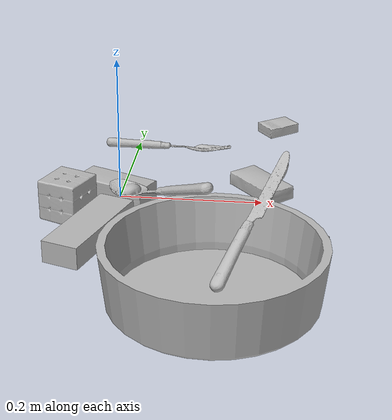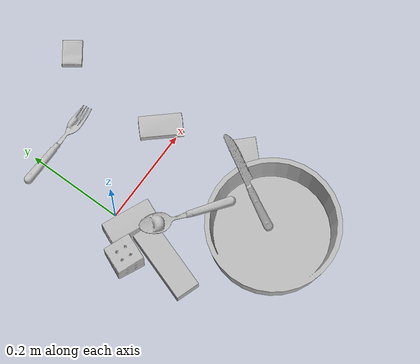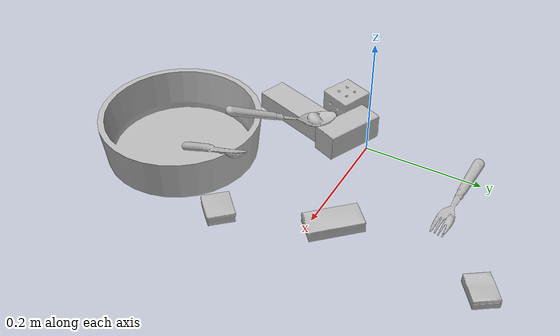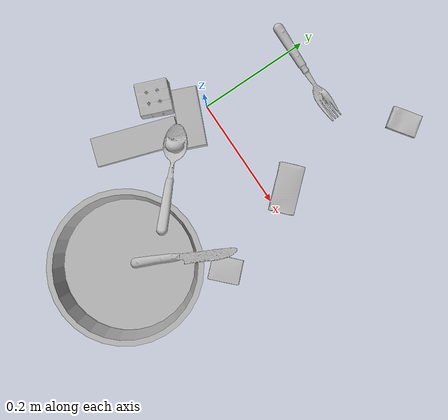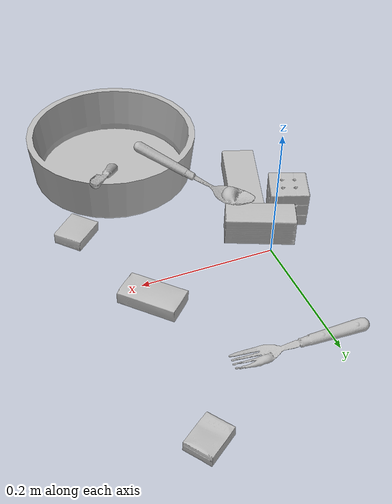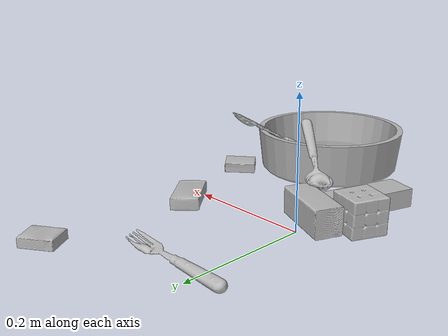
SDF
<sdf version="1.4">
  <world name="default">
    <light name="light1" type="point">
      <pose>0 0 1 0 0 0</pose>
      <diffuse>3 3 3 1</diffuse>
      <specular>3 3 3 1</specular>
    </light>
    <light name="light2" type="point">
      <pose>0 0.5 2 0 0 0</pose>
      <diffuse>1 1 1 1</diffuse>
      <specular>1 1 1 1</specular>
    </light>
    <light name="light3" type="point">
      <pose>0 0.5 2 0 0 0</pose>
      <diffuse>3 3 3 1</diffuse>
      <specular>3 3 3 1</specular>
    </light>
    <scene>
      <ambient>0.7 0.7 0.7</ambient>
    </scene>
    <model name="box11">
      <link name="link_box11">
        <collision name="default">
          <geometry>
            <mesh>
              <uri>model://cracker_box/collision_meshes/collision.obj</uri>
              <scale>0.25 0.25 0.25</scale>
            </mesh>
          </geometry>
          <surface>
            <friction>
              <ode>
                <mu>0.5</mu>
                <mu2>0.5</mu2>
              </ode>
            </friction>
          <contact>
        <ode>
            <max_vel>0</max_vel>
            <min_depth>0.0001</min_depth>
            <kp>1e8</kp>
        </ode>
    </contact></surface>
        </collision>
        <visual name="default">
          <geometry>
            <mesh>
              <uri>model://cracker_box/visual_meshes/visual.dae</uri>
              <scale>0.25 0.25 0.25</scale>
            </mesh>
          </geometry>
        </visual>
        <inertial>
          <mass>0.04448898881673813</mass>
          <pose>0.00023660270380787551 6.358561950037256e-05 -0.000425738311605528 -0.00031620780372907927 -0.011106488668730609 0.002546795468482302</pose>
          <inertia>
            <ixx>7.0725087e-06</ixx>
            <iyy>1.1678099e-05</iyy>
            <izz>1.666572e-05</izz>
            <ixy>0</ixy>
            <ixz>0</ixz>
            <iyz>0</iyz>
          </inertia>
        </inertial>
      </link>
      <pose>0.21581220626831055 0.2707640826702118 0.009120451286435127 -0.011788069413172004 -0.00736711301105751 0.6105540675183195</pose>
    </model>
    <model name="box12">
      <link name="link_box12">
        <collision name="default">
          <geometry>
            <mesh>
              <uri>model://wood_block/collision_meshes/collision.obj</uri>
              <scale>0.5 0.5 0.5</scale>
            </mesh>
          </geometry>
          <surface>
            <friction>
              <ode>
                <mu>0.5</mu>
                <mu2>0.5</mu2>
              </ode>
            </friction>
          <contact>
        <ode>
            <max_vel>0</max_vel>
            <min_depth>0.0001</min_depth>
            <kp>1e8</kp>
        </ode>
    </contact></surface>
        </collision>
        <visual name="default">
          <geometry>
            <mesh>
              <uri>model://wood_block/visual_meshes/visual.dae</uri>
              <scale>0.5 0.5 0.5</scale>
            </mesh>
          </geometry>
        </visual>
        <inertial>
          <mass>0.30308207869529724</mass>
          <pose>-2.906657982748584e-06 -0.000285404734313488 0.00013204291462898254 -0.05220975528484064 -0.0051926956083073895 -0.006861380255216688</pose>
          <inertia>
            <ixx>0.00010139242</ixx>
            <iyy>0.00032029866</iyy>
            <izz>0.0003191006</izz>
            <ixy>0</ixy>
            <ixz>0</ixz>
            <iyz>0</iyz>
          </inertia>
        </inertial>
      </link>
      <pose>0.001506483182311058 -0.03705042973160744 0.02262926660478115 -0.005208399081455181 0.005718828951923755 2.737729597548956</pose>
    </model>
    <model name="box13">
      <link name="link_box13">
        <collision name="default">
          <geometry>
            <mesh>
              <uri>model://pudding_box/collision_meshes/collision.obj</uri>
              <scale>0.5 0.5 0.5</scale>
            </mesh>
          </geometry>
          <surface>
            <friction>
              <ode>
                <mu>0.5</mu>
                <mu2>0.5</mu2>
              </ode>
            </friction>
          <contact>
        <ode>
            <max_vel>0</max_vel>
            <min_depth>0.0001</min_depth>
            <kp>1e8</kp>
        </ode>
    </contact></surface>
        </collision>
        <visual name="default">
          <geometry>
            <mesh>
              <uri>model://pudding_box/visual_meshes/visual.dae</uri>
              <scale>0.5 0.5 0.5</scale>
            </mesh>
          </geometry>
        </visual>
        <inertial>
          <mass>0.06630203872919083</mass>
          <pose>0.00024474109522998333 0.00040339428232982755 -0.00025944141088984907 0.0052131027026664865 -0.006603797821229493 0.02007983447369903</pose>
          <inertia>
            <ixx>1.873776e-05</ixx>
            <iyy>1.2606899e-05</iyy>
            <izz>2.7671198e-05</izz>
            <ixy>0</ixy>
            <ixz>0</ixz>
            <iyz>0</iyz>
          </inertia>
        </inertial>
      </link>
      <pose>0.25462713837623596 -0.1318722516298294 0.009862908162176609 0.022348516154632785 -0.011391725600831163 -0.804823797195066</pose>
    </model>
    <model name="box21">
      <link name="link_box21">
        <collision name="default">
          <geometry>
            <mesh>
              <uri>model://sugar_box/collision_meshes/collision.obj</uri>
              <scale>0.5 0.5 0.5</scale>
            </mesh>
          </geometry>
          <surface>
            <friction>
              <ode>
                <mu>0.5</mu>
                <mu2>0.5</mu2>
              </ode>
            </friction>
          <contact>
        <ode>
            <max_vel>0</max_vel>
            <min_depth>0.0001</min_depth>
            <kp>1e8</kp>
        </ode>
    </contact></surface>
        </collision>
        <visual name="default">
          <geometry>
            <mesh>
              <uri>model://sugar_box/visual_meshes/visual.dae</uri>
              <scale>0.5 0.5 0.5</scale>
            </mesh>
          </geometry>
        </visual>
        <inertial>
          <mass>0.09398066252470016</mass>
          <pose>0.0005171863595023751 1.924554817378521e-05 -0.00018182402709499002 -0.00040462650409139634 0.0010506636387973133 0.002615378555960767</pose>
          <inertia>
            <ixx>1.9576108e-05</ixx>
            <iyy>6.3274e-05</iyy>
            <izz>7.574653e-05</izz>
            <ixy>0</ixy>
            <ixz>0</ixz>
            <iyz>0</iyz>
          </inertia>
        </inertial>
      </link>
      <pose>0.1973000317811966 0.035254620015621185 0.011399297043681145 0.0007759224883024501 -0.023432924289577876 2.3066360030523194</pose>
    </model>
    <model name="box22">
      <link name="link_box22">
        <collision name="default">
          <geometry>
            <mesh>
              <uri>model://jenga/collision_meshes/collision.obj</uri>
              <scale>1.0 1.0 1.0</scale>
            </mesh>
          </geometry>
          <surface>
            <friction>
              <ode>
                <mu>0.5</mu>
                <mu2>0.5</mu2>
              </ode>
            </friction>
          <contact>
        <ode>
            <max_vel>0</max_vel>
            <min_depth>0.0001</min_depth>
            <kp>1e8</kp>
        </ode>
    </contact></surface>
        </collision>
        <visual name="default">
          <geometry>
            <mesh>
              <uri>model://jenga/visual_meshes/visual.dae</uri>
              <scale>1.0 1.0 1.0</scale>
            </mesh>
          </geometry>
        </visual>
        <inertial>
          <mass>0.2620435655117035</mass>
          <pose>-2.5028555228345795e-07 -0.0001025000965455547 -4.092339804628864e-05 0.0 -7.342154049184251e-07 0.0</pose>
          <inertia>
            <ixx>7.251381e-05</ixx>
            <iyy>0.0004913516</iyy>
            <izz>0.00052455964</izz>
            <ixy>0</ixy>
            <ixz>0</ixz>
            <iyz>0</iyz>
          </inertia>
        </inertial>
      </link>
      <pose>-0.016809551045298576 -0.13584397733211517 0.014999995939433575 -1.8771471503855955e-08 -3.4304766778554255e-09 -1.894237535110371</pose>
    </model>
    <model name="box23">
      <link name="link_box23">
        <collision name="default">
          <geometry>
            <mesh>
              <uri>model://rubiks_cube/collision_meshes/collision.obj</uri>
              <scale>1.0 1.0 1.0</scale>
            </mesh>
          </geometry>
          <surface>
            <friction>
              <ode>
                <mu>0.5</mu>
                <mu2>0.5</mu2>
              </ode>
            </friction>
          <contact>
        <ode>
            <max_vel>0</max_vel>
            <min_depth>0.0001</min_depth>
            <kp>1e8</kp>
        </ode>
    </contact></surface>
        </collision>
        <visual name="default">
          <geometry>
            <mesh>
              <uri>model://rubiks_cube/visual_meshes/visual.dae</uri>
              <scale>1.0 1.0 1.0</scale>
            </mesh>
          </geometry>
        </visual>
        <inertial>
          <mass>0.1897622048854828</mass>
          <pose>2.6721043468569405e-05 5.256967051536776e-05 -7.264316082000732e-06 -0.054673156626660294 -0.09814014504853939 -0.034453657529750985</pose>
          <inertia>
            <ixx>0.00010485636</ixx>
            <iyy>0.00010436737</iyy>
            <izz>0.000105725274</izz>
            <ixy>0</ixy>
            <ixz>0</ixz>
            <iyz>0</iyz>
          </inertia>
        </inertial>
      </link>
      <pose>-0.05935477092862129 -0.06819592416286469 0.02867898903787136 -1.4343365434266234e-07 -3.5670397531381373e-08 2.7549642717223133</pose>
    </model>
    <model name="plate1">
      <link name="link_plate1">
        <collision name="default">
          <geometry>
            <mesh>
              <uri>model://pan_tefal/collision_meshes/collision.obj</uri>
              <scale>1.0 1.0 1.0</scale>
            </mesh>
          </geometry>
          <surface>
            <friction>
              <ode>
                <mu>0.5</mu>
                <mu2>0.5</mu2>
              </ode>
            </friction>
          <contact>
        <ode>
            <max_vel>0</max_vel>
            <min_depth>0.0001</min_depth>
            <kp>1e8</kp>
        </ode>
    </contact></surface>
        </collision>
        <visual name="default">
          <geometry>
            <mesh>
              <uri>model://pan_tefal/visual_meshes/visual.dae</uri>
              <scale>1.0 1.0 1.0</scale>
            </mesh>
          </geometry>
        </visual>
        <inertial>
          <mass>0.8768928050994873</mass>
          <pose>-0.00018002584693022072 3.279091833974235e-05 -0.008514934219419956 0.0008190272128915226 -0.0003301349770144462 -0.3318573305948388</pose>
          <inertia>
            <ixx>0.0060531492</ixx>
            <iyy>0.006092174</iyy>
            <izz>0.011142679</izz>
            <ixy>0</ixy>
            <ixz>0</ixz>
            <iyz>0</iyz>
          </inertia>
        </inertial>
      </link>
      <pose>0.15328016877174377 -0.2667556703090668 0.03804999217391014 1.614651036978366e-08 3.392114477979735e-08 1.6305533061618533</pose>
    </model>
    <model name="silverware1">
      <link name="link_silverware1">
        <collision name="default">
          <geometry>
            <mesh>
              <uri>model://spoon/collision_meshes/collision.obj</uri>
              <scale>1.0 1.0 1.0</scale>
            </mesh>
          </geometry>
          <surface>
            <friction>
              <ode>
                <mu>0.5</mu>
                <mu2>0.5</mu2>
              </ode>
            </friction>
          <contact>
        <ode>
            <max_vel>0</max_vel>
            <min_depth>0.0001</min_depth>
            <kp>1e8</kp>
        </ode>
    </contact></surface>
        </collision>
        <visual name="default">
          <geometry>
            <mesh>
              <uri>model://spoon/visual_meshes/visual.dae</uri>
              <scale>1.0 1.0 1.0</scale>
            </mesh>
          </geometry>
        </visual>
        <inertial>
          <mass>0.030811671167612076</mass>
          <pose>-0.005526314955204725 -0.0016034170985221863 -0.0007271655485965312 0.03521832474385929 -0.03906585488360169 0.0061506134218646934</pose>
          <inertia>
            <ixx>1.713795e-06</ixx>
            <iyy>0.000117237374</iyy>
            <izz>0.00011808256</izz>
            <ixy>0</ixy>
            <ixz>0</ixz>
            <iyz>0</iyz>
          </inertia>
        </inertial>
      </link>
      <pose>0.07120877504348755 -0.12363409996032715 0.07112310826778412 -0.05417536648055648 0.3655022789509626 2.4135996928985284</pose>
    </model>
    <model name="silverware2">
      <link name="link_silverware2">
        <collision name="default">
          <geometry>
            <mesh>
              <uri>model://fork/collision_meshes/collision.obj</uri>
              <scale>1.0 1.0 1.0</scale>
            </mesh>
          </geometry>
          <surface>
            <friction>
              <ode>
                <mu>0.5</mu>
                <mu2>0.5</mu2>
              </ode>
            </friction>
          <contact>
        <ode>
            <max_vel>0</max_vel>
            <min_depth>0.0001</min_depth>
            <kp>1e8</kp>
        </ode>
    </contact></surface>
        </collision>
        <visual name="default">
          <geometry>
            <mesh>
              <uri>model://fork/visual_meshes/visual.dae</uri>
              <scale>1.0 1.0 1.0</scale>
            </mesh>
          </geometry>
        </visual>
        <inertial>
          <mass>0.016358599066734314</mass>
          <pose>-0.029570044949650764 0.00046588238910771906 0.0003218862693756819 -0.013550710307666105 -0.010977838412833367 0.014453905587424366</pose>
          <inertia>
            <ixx>5.7346136e-07</ixx>
            <iyy>4.270759e-05</iyy>
            <izz>4.29641e-05</izz>
            <ixy>0</ixy>
            <ixz>0</ixz>
            <iyz>0</iyz>
          </inertia>
        </inertial>
      </link>
      <pose>0.04626721143722534 0.17805157601833344 0.005687120370566845 -0.19023517486642005 0.024834136058266166 -0.029001183317379168</pose>
    </model>
    <model name="silverware3">
      <link name="link_silverware3">
        <collision name="default">
          <geometry>
            <mesh>
              <uri>model://knife/collision_meshes/collision.obj</uri>
              <scale>1.0 1.0 1.0</scale>
            </mesh>
          </geometry>
          <surface>
            <friction>
              <ode>
                <mu>0.5</mu>
                <mu2>0.5</mu2>
              </ode>
            </friction>
          <contact>
        <ode>
            <max_vel>0</max_vel>
            <min_depth>0.0001</min_depth>
            <kp>1e8</kp>
        </ode>
    </contact></surface>
        </collision>
        <visual name="default">
          <geometry>
            <mesh>
              <uri>model://knife/visual_meshes/visual.dae</uri>
              <scale>1.0 1.0 1.0</scale>
            </mesh>
          </geometry>
        </visual>
        <inertial>
          <mass>0.02715744450688362</mass>
          <pose>-0.023785259574651718 0.0015275124460458755 5.062024501967244e-05 0.07304743927496513 0.01724841757037888 -0.007409820832494391</pose>
          <inertia>
            <ixx>7.708383e-07</ixx>
            <iyy>0.00010433449</iyy>
            <izz>0.00010458276</izz>
            <ixy>0</ixy>
            <ixz>0</ixz>
            <iyz>0</iyz>
          </inertia>
        </inertial>
      </link>
      <pose>0.19470688700675964 -0.17893025279045105 0.06439077854156494 -0.1405470616983095 -0.5296595454012055 1.1294441000212858</pose>
    </model>
  <physics type="ode">
      <max_contacts>50</max_contacts>
      <ode>
        <solver>
          <type>quick</type>
          <iters>75</iters>
        </solver>
        <constraints>
          <contact_max_correcting_vel>0</contact_max_correcting_vel>
          <contact_surface_layer>0</contact_surface_layer>
        </constraints>
      </ode>
    </physics></world>
</sdf>
